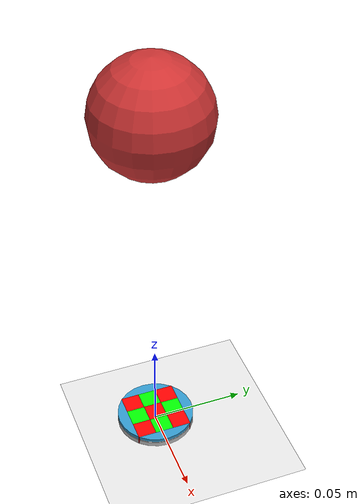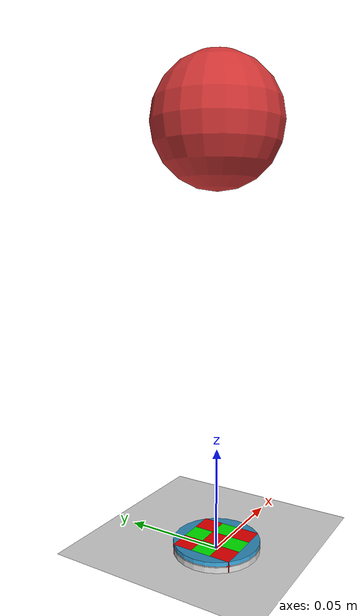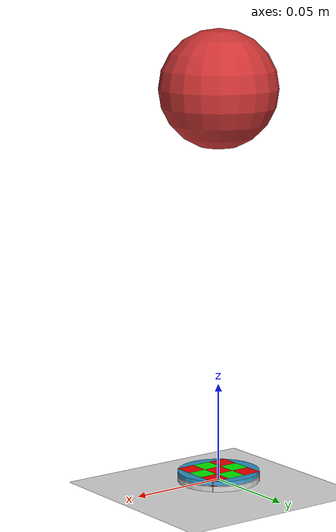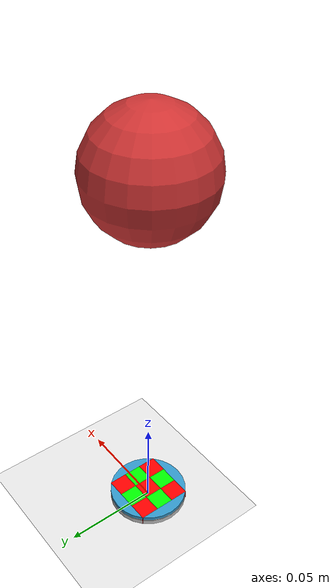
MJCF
<mujoco model="ball_on_sensor">
  <compiler angle="degree" coordinate="local"/>
  <option gravity="0 0 -9.81" timestep="0.002"/>

  <default>
    <geom type="box" size="0.02 0.02 0.005"
          rgba="0.2 0.6 0.8 1"
          condim="3"
          friction="1 0.005 0.0001"/>
  </default>
 <asset>
        <mesh name="wedge_mesh" file="wedge.stl" scale="0.001 0.001 0.001"/>
    </asset>
  <worldbody>
    <!-- Ground -->
    <geom name="ground" type="plane" size="1 1 0.1" rgba="0.9 0.9 0.9 1"/>

    <!-- Include sensor pad array -->
    <include file="presstip.xml"/>

    <!-- Ball / probe -->
    <body name="probe" pos="0 0 0.2">
      <joint type="free"/>
      <geom type="sphere" size="0.03" rgba="0.8 0.2 0.2 1" mass="0.5"/>
    </body>
  </worldbody>
</mujoco>

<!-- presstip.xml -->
<mujoco model="circle_force_pad_wedges">

    <!-- ASSETS (meshes, textures, etc.) -->

    <!-- Circular base -->
    <geom name="base" type="cylinder" size="0.021 0.0025" pos="0 0 0"
          rgba="0.8 0.8 0.8 1"/>

    <!-- 3x3 central tactile pads -->
    <body name="pad_array" pos="0 0 0.0025">
      <!-- Row 0 -->
      <geom name="pad_0_0" pos="-0.01 -0.01 0" size="0.005 0.005 0.0025" rgba="1 0 0 1"/>
      <geom name="pad_0_1" pos="-0.01 0 0" size="0.005 0.005 0.0025" rgba="0 1 0 1"/>
      <geom name="pad_0_2" pos="-0.01 0.01 0" size="0.005 0.005 0.0025" rgba="1 0 0 1"/>
      <!-- Row 1 -->
      <geom name="pad_1_0" pos="0 -0.01 0" size="0.005 0.005 0.0025" rgba="0 1 0 1"/>
      <geom name="pad_1_1" pos="0 0 0" size="0.005 0.005 0.0025" rgba="1 0 0 1"/>
      <geom name="pad_1_2" pos="0 0.01 0" size="0.005 0.005 0.0025" rgba="0 1 0 1"/>
      <!-- Row 2 -->
      <geom name="pad_2_0" pos="0.01 -0.01 0" size="0.005 0.005 0.0025" rgba="1 0 0 1"/>
      <geom name="pad_2_1" pos="0.01 0 0" size="0.005 0.005 0.0025" rgba="0 1 0 1"/>
      <geom name="pad_2_2" pos="0.01 0.01 0" size="0.005 0.005 0.0025" rgba="1 0 0 1"/>
    </body>

    <!-- 4 wedge-shaped outer pads -->
    <geom name="wedge_top" type="mesh" mesh="wedge_mesh"  size="0.001 0.001 0.001" pos="0.015 0.015 0.003" quat="0 0 0 1" rgba="0.2 0.6 0.8 1"/>
    <geom name="wedge_bottom" type="mesh" mesh="wedge_mesh"  size="0.001 0.001 0.001" pos="0.015 -0.015 0.005" quat="0 0 1 0" rgba="0.2 0.6 0.8 1"/>
    <geom name="wedge_left" type="mesh" mesh="wedge_mesh"  size="0.001 0.001 0.001" pos="-0.015 -0.015 0.005" quat="0 1 1 0" rgba="0.2 0.6 0.8 1"/>
  <geom name="wedge_right" type="mesh" mesh="wedge_mesh"  size="0.001 0.001 0.001" pos="0.015 0.015 0.005" quat="0 -1 1 0" rgba="0.2 0.6 0.8 1"/>

</mujoco>
